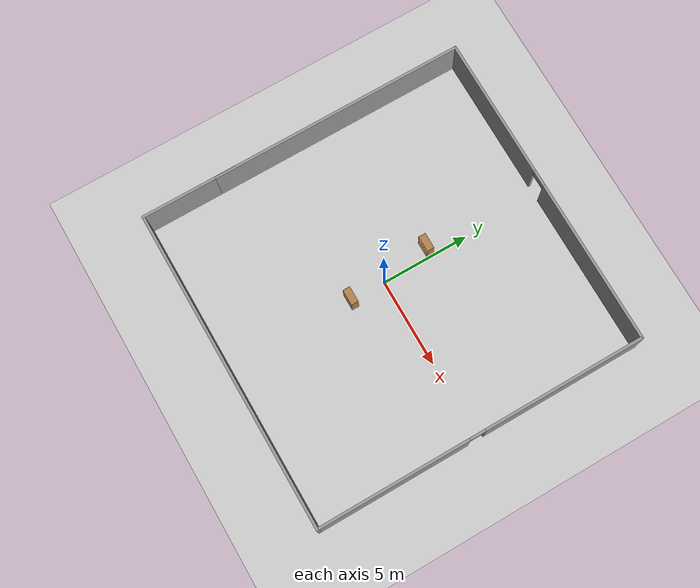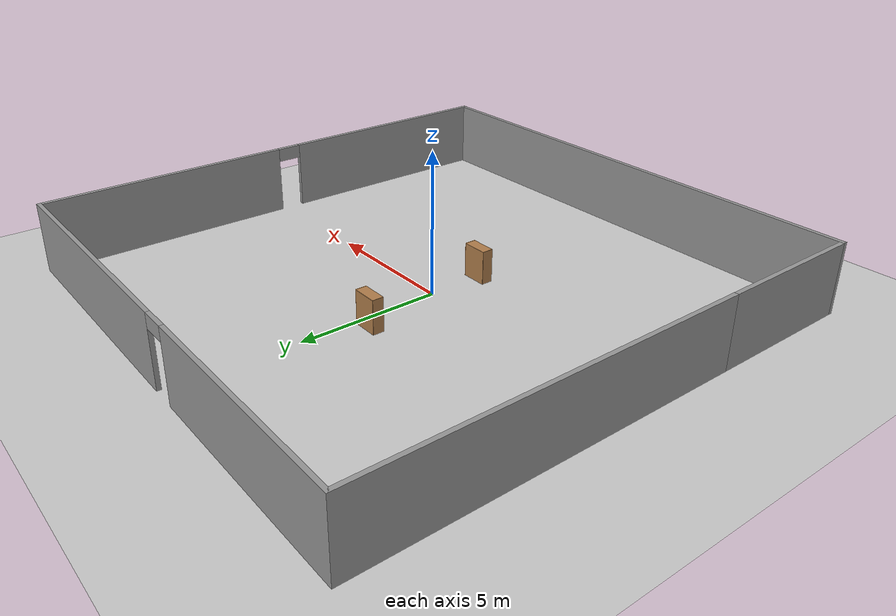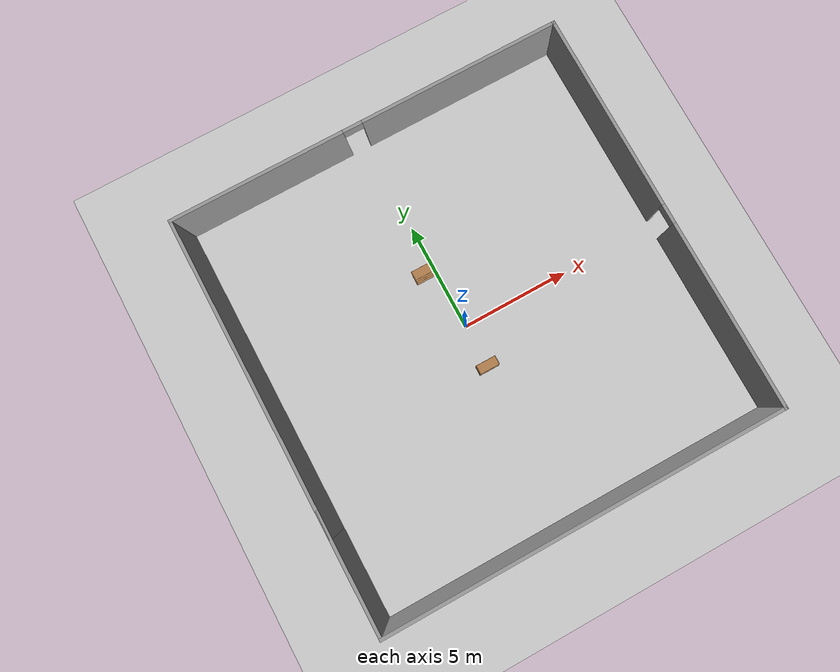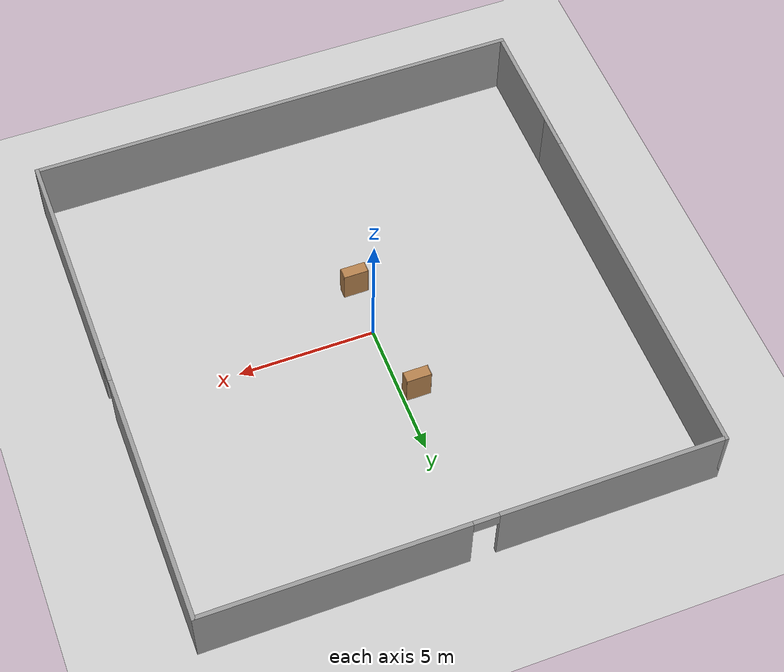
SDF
<sdf version="1.7">
 <world name="default">
  <light name="sun" type="directional">
   <pose>0 0 10 0 -0 0</pose>
   <diffuse>0.8 0.8 0.8 1</diffuse>
   <specular>0.2 0.2 0.2 1</specular>
   <attenuation>
    <range>1000</range>
    <constant>0.9</constant>
    <linear>0.01</linear>
    <quadratic>0.001</quadratic>
   </attenuation>
   <direction>-0.5 0.1 -0.9</direction>
   <spot><inner_angle>0</inner_angle><outer_angle>0</outer_angle><falloff>0</falloff></spot>
  </light>
  <model name="ground_plane">
   <static>1</static>
   <link name="link">
    <collision name="collision">
     <geometry><plane><normal>0 0 1</normal><size>100 100</size></plane></geometry>
     <surface>
      <contact><collide_bitmask>65535</collide_bitmask></contact>
      <friction><ode><mu>100</mu><mu2>50</mu2></ode></friction>
     </surface>
    </collision>
    <visual name="visual">
     <cast_shadows>0</cast_shadows>
     <geometry><plane><normal>0 0 1</normal><size>100 100</size></plane></geometry>
     <material>
      <script><uri>file://media/materials/scripts/gazebo.material</uri><name>Gazebo/Grey</name></script>
     </material>
    </visual>
   </link>
  </model>
  <gravity>0 0 -9.8</gravity>
  <magnetic_field>6e-06 2.3e-05 -4.2e-05</magnetic_field>
  <atmosphere type="adiabatic"/>
  <physics type="ode">
   <max_step_size>0.001</max_step_size>
   <real_time_factor>1</real_time_factor>
   <real_time_update_rate>1000</real_time_update_rate>
  </physics>
  <scene><ambient>0.4 0.4 0.4 1</ambient><background>0.7 0.7 0.7 1</background><shadows>1</shadows></scene>
  <audio><device>default</device></audio>
  <spherical_coordinates>
   <surface_model>EARTH_WGS84</surface_model>
   <latitude_deg>0</latitude_deg>
   <longitude_deg>0</longitude_deg>
   <elevation>0</elevation>
   <heading_deg>0</heading_deg>
  </spherical_coordinates>
  <model name="bookshelf">
   <static>1</static>
   <link name="link">
    <inertial><mass>1</mass></inertial>
    <collision name="back">
     <pose>0 0.005 0.6 0 -0 0</pose>
     <geometry><box><size>0.9 0.01 1.2</size></box></geometry>
    </collision>
    <visual name="visual1">
     <pose>0 0.005 0.6 0 -0 0</pose>
     <geometry><box><size>0.9 0.01 1.2</size></box></geometry>
     <material>
      <script><uri>file://media/materials/scripts/gazebo.material</uri><name>Gazebo/Wood</name></script>
     </material>
    </visual>
    <collision name="left_side">
     <pose>0.45 -0.195 0.6 0 -0 0</pose>
     <geometry><box><size>0.02 0.4 1.2</size></box></geometry>
    </collision>
    <visual name="visual2">
     <pose>0.45 -0.195 0.6 0 -0 0</pose>
     <geometry><box><size>0.02 0.4 1.2</size></box></geometry>
     <material>
      <script><uri>file://media/materials/scripts/gazebo.material</uri><name>Gazebo/Wood</name></script>
     </material>
    </visual>
    <collision name="right_side">
     <pose>-0.45 -0.195 0.6 0 -0 0</pose>
     <geometry><box><size>0.02 0.4 1.2</size></box></geometry>
    </collision>
    <visual name="visual3">
     <pose>-0.45 -0.195 0.6 0 -0 0</pose>
     <geometry><box><size>0.02 0.4 1.2</size></box></geometry>
     <material>
      <script><uri>file://media/materials/scripts/gazebo.material</uri><name>Gazebo/Wood</name></script>
     </material>
    </visual>
    <collision name="bottom">
     <pose>0 -0.195 0.03 0 -0 0</pose>
     <geometry><box><size>0.88 0.4 0.06</size></box></geometry>
    </collision>
    <visual name="visual4">
     <pose>0 -0.195 0.03 0 -0 0</pose>
     <geometry><box><size>0.88 0.4 0.06</size></box></geometry>
     <material>
      <script><uri>file://media/materials/scripts/gazebo.material</uri><name>Gazebo/Wood</name></script>
     </material>
    </visual>
    <collision name="top">
     <pose>0 -0.195 1.19 0 -0 0</pose>
     <geometry><box><size>0.88 0.4 0.02</size></box></geometry>
    </collision>
    <visual name="visual5">
     <pose>0 -0.195 1.19 0 -0 0</pose>
     <geometry><box><size>0.88 0.4 0.02</size></box></geometry>
     <material>
      <script><uri>file://media/materials/scripts/gazebo.material</uri><name>Gazebo/Wood</name></script>
     </material>
    </visual>
    <collision name="low_shelf">
     <pose>0 -0.195 0.43 0 -0 0</pose>
     <geometry><box><size>0.88 0.4 0.02</size></box></geometry>
    </collision>
    <visual name="visual6">
     <pose>0 -0.195 0.43 0 -0 0</pose>
     <geometry><box><size>0.88 0.4 0.02</size></box></geometry>
     <material>
      <script><uri>file://media/materials/scripts/gazebo.material</uri><name>Gazebo/Wood</name></script>
     </material>
    </visual>
    <collision name="high_shelf">
     <pose>0 -0.195 0.8 0 -0 0</pose>
     <geometry><box><size>0.88 0.4 0.02</size></box></geometry>
    </collision>
    <visual name="visual7">
     <pose>0 -0.195 0.8 0 -0 0</pose>
     <geometry><box><size>0.88 0.4 0.02</size></box></geometry>
     <material>
      <script><uri>file://media/materials/scripts/gazebo.material</uri><name>Gazebo/Wood</name></script>
     </material>
    </visual>
   </link>
   <pose>-0.519522 3.0252 0 0 -0 0</pose>
  </model>
  <model name="bookshelf_0">
   <static>1</static>
   <link name="link">
    <inertial><mass>1</mass></inertial>
    <collision name="back">
     <pose>0 0.005 0.6 0 -0 0</pose>
     <geometry><box><size>0.9 0.01 1.2</size></box></geometry>
    </collision>
    <visual name="visual1">
     <pose>0 0.005 0.6 0 -0 0</pose>
     <geometry><box><size>0.9 0.01 1.2</size></box></geometry>
     <material>
      <script><uri>file://media/materials/scripts/gazebo.material</uri><name>Gazebo/Wood</name></script>
     </material>
    </visual>
    <collision name="left_side">
     <pose>0.45 -0.195 0.6 0 -0 0</pose>
     <geometry><box><size>0.02 0.4 1.2</size></box></geometry>
    </collision>
    <visual name="visual2">
     <pose>0.45 -0.195 0.6 0 -0 0</pose>
     <geometry><box><size>0.02 0.4 1.2</size></box></geometry>
     <material>
      <script><uri>file://media/materials/scripts/gazebo.material</uri><name>Gazebo/Wood</name></script>
     </material>
    </visual>
    <collision name="right_side">
     <pose>-0.45 -0.195 0.6 0 -0 0</pose>
     <geometry><box><size>0.02 0.4 1.2</size></box></geometry>
    </collision>
    <visual name="visual3">
     <pose>-0.45 -0.195 0.6 0 -0 0</pose>
     <geometry><box><size>0.02 0.4 1.2</size></box></geometry>
     <material>
      <script><uri>file://media/materials/scripts/gazebo.material</uri><name>Gazebo/Wood</name></script>
     </material>
    </visual>
    <collision name="bottom">
     <pose>0 -0.195 0.03 0 -0 0</pose>
     <geometry><box><size>0.88 0.4 0.06</size></box></geometry>
    </collision>
    <visual name="visual4">
     <pose>0 -0.195 0.03 0 -0 0</pose>
     <geometry><box><size>0.88 0.4 0.06</size></box></geometry>
     <material>
      <script><uri>file://media/materials/scripts/gazebo.material</uri><name>Gazebo/Wood</name></script>
     </material>
    </visual>
    <collision name="top">
     <pose>0 -0.195 1.19 0 -0 0</pose>
     <geometry><box><size>0.88 0.4 0.02</size></box></geometry>
    </collision>
    <visual name="visual5">
     <pose>0 -0.195 1.19 0 -0 0</pose>
     <geometry><box><size>0.88 0.4 0.02</size></box></geometry>
     <material>
      <script><uri>file://media/materials/scripts/gazebo.material</uri><name>Gazebo/Wood</name></script>
     </material>
    </visual>
    <collision name="low_shelf">
     <pose>0 -0.195 0.43 0 -0 0</pose>
     <geometry><box><size>0.88 0.4 0.02</size></box></geometry>
    </collision>
    <visual name="visual6">
     <pose>0 -0.195 0.43 0 -0 0</pose>
     <geometry><box><size>0.88 0.4 0.02</size></box></geometry>
     <material>
      <script><uri>file://media/materials/scripts/gazebo.material</uri><name>Gazebo/Wood</name></script>
     </material>
    </visual>
    <collision name="high_shelf">
     <pose>0 -0.195 0.8 0 -0 0</pose>
     <geometry><box><size>0.88 0.4 0.02</size></box></geometry>
    </collision>
    <visual name="visual7">
     <pose>0 -0.195 0.8 0 -0 0</pose>
     <geometry><box><size>0.88 0.4 0.02</size></box></geometry>
     <material>
      <script><uri>file://media/materials/scripts/gazebo.material</uri><name>Gazebo/Wood</name></script>
     </material>
    </visual>
   </link>
   <pose>-0.022772 -1.79287 0 0 -0 0</pose>
  </model>
  <model name="test1">
   <pose>0.38533 0.090125 0 0 -0 0</pose>
   <link name="Wall_10">
    <pose>9.05 -0 0 0 -0 -1.5708</pose>
    <visual name="Wall_10_Visual_0">
     <pose>-4.77369 0 1.25 0 -0 0</pose>
     <geometry><box><size>9.20261 0.15 2.5</size></box></geometry>
     <material>
      <script><uri>file://media/materials/scripts/gazebo.material</uri><name>Gazebo/Grey</name></script>
      <ambient>1 1 1 1</ambient>
     </material>
     <meta><layer>0</layer></meta>
    </visual>
    <collision name="Wall_10_Collision_0">
     <geometry><box><size>9.20261 0.15 2.5</size></box></geometry>
     <pose>-4.77369 0 1.25 0 -0 0</pose>
    </collision>
    <visual name="Wall_10_Visual_1">
     <pose>5.05131 0 1.25 0 -0 0</pose>
     <geometry><box><size>8.64739 0.15 2.5</size></box></geometry>
     <material>
      <script><uri>file://media/materials/scripts/gazebo.material</uri><name>Gazebo/Grey</name></script>
      <ambient>1 1 1 1</ambient>
     </material>
     <meta><layer>0</layer></meta>
    </visual>
    <collision name="Wall_10_Collision_1">
     <geometry><box><size>8.64739 0.15 2.5</size></box></geometry>
     <pose>5.05131 0 1.25 0 -0 0</pose>
    </collision>
    <visual name="Wall_10_Visual_2">
     <pose>0.277613 0 2.25 0 -0 0</pose>
     <geometry><box><size>0.9 0.15 0.5</size></box></geometry>
     <material>
      <script><uri>file://media/materials/scripts/gazebo.material</uri><name>Gazebo/Grey</name></script>
      <ambient>1 1 1 1</ambient>
     </material>
     <meta><layer>0</layer></meta>
    </visual>
    <collision name="Wall_10_Collision_2">
     <geometry><box><size>0.9 0.15 0.5</size></box></geometry>
     <pose>0.277613 0 2.25 0 -0 0</pose>
    </collision>
   </link>
   <link name="Wall_11">
    <collision name="Wall_11_Collision">
     <geometry><box><size>18.25 0.15 2.5</size></box></geometry>
     <pose>0 0 1.25 0 -0 0</pose>
    </collision>
    <visual name="Wall_11_Visual">
     <pose>0 0 1.25 0 -0 0</pose>
     <geometry><box><size>18.25 0.15 2.5</size></box></geometry>
     <material>
      <script><uri>file://media/materials/scripts/gazebo.material</uri><name>Gazebo/Grey</name></script>
      <ambient>1 1 1 1</ambient>
     </material>
     <meta><layer>0</layer></meta>
    </visual>
    <pose>-0 -9.3 0 0 -0 3.14159</pose>
   </link>
   <link name="Wall_12">
    <collision name="Wall_12_Collision">
     <geometry><box><size>5.5 0.15 2.5</size></box></geometry>
     <pose>0 0 1.25 0 -0 0</pose>
    </collision>
    <visual name="Wall_12_Visual">
     <pose>0 0 1.25 0 -0 0</pose>
     <geometry><box><size>5.5 0.15 2.5</size></box></geometry>
     <material>
      <script><uri>file://media/materials/scripts/gazebo.material</uri><name>Gazebo/Grey</name></script>
      <ambient>1 1 1 1</ambient>
     </material>
     <meta><layer>0</layer></meta>
    </visual>
    <pose>-9.05 -6.625 0 0 -0 1.5708</pose>
   </link>
   <link name="Wall_8">
    <collision name="Wall_8_Collision">
     <geometry><box><size>14.5 0.15 2.5</size></box></geometry>
     <pose>0 0 1.25 0 -0 0</pose>
    </collision>
    <visual name="Wall_8_Visual">
     <pose>0 0 1.25 0 -0 0</pose>
     <geometry><box><size>14.5 0.15 2.5</size></box></geometry>
     <material>
      <script><uri>file://media/materials/scripts/gazebo.material</uri><name>Gazebo/Grey</name></script>
      <ambient>1 1 1 1</ambient>
     </material>
     <meta><layer>0</layer></meta>
    </visual>
    <pose>-9.05 2.125 0 0 -0 1.5708</pose>
   </link>
   <link name="Wall_9">
    <pose>-0 9.3 0 0 -0 0</pose>
    <visual name="Wall_9_Visual_0">
     <pose>-5.10157 0 1.25 0 -0 0</pose>
     <geometry><box><size>8.04686 0.15 2.5</size></box></geometry>
     <material>
      <script><uri>file://media/materials/scripts/gazebo.material</uri><name>Gazebo/Grey</name></script>
      <ambient>1 1 1 1</ambient>
     </material>
     <meta><layer>0</layer></meta>
    </visual>
    <collision name="Wall_9_Collision_0">
     <geometry><box><size>8.04686 0.15 2.5</size></box></geometry>
     <pose>-5.10157 0 1.25 0 -0 0</pose>
    </collision>
    <visual name="Wall_9_Visual_1">
     <pose>4.47343 0 1.25 0 -0 0</pose>
     <geometry><box><size>9.30314 0.15 2.5</size></box></geometry>
     <material>
      <script><uri>file://media/materials/scripts/gazebo.material</uri><name>Gazebo/Grey</name></script>
      <ambient>1 1 1 1</ambient>
     </material>
     <meta><layer>0</layer></meta>
    </visual>
    <collision name="Wall_9_Collision_1">
     <geometry><box><size>9.30314 0.15 2.5</size></box></geometry>
     <pose>4.47343 0 1.25 0 -0 0</pose>
    </collision>
    <visual name="Wall_9_Visual_2">
     <pose>-0.628141 0 2.25 0 -0 0</pose>
     <geometry><box><size>0.9 0.15 0.5</size></box></geometry>
     <material>
      <script><uri>file://media/materials/scripts/gazebo.material</uri><name>Gazebo/Grey</name></script>
      <ambient>1 1 1 1</ambient>
     </material>
     <meta><layer>0</layer></meta>
    </visual>
    <collision name="Wall_9_Collision_2">
     <geometry><box><size>0.9 0.15 0.5</size></box></geometry>
     <pose>-0.628141 0 2.25 0 -0 0</pose>
    </collision>
   </link>
   <static>1</static>
  </model>
 </world>
</sdf>
